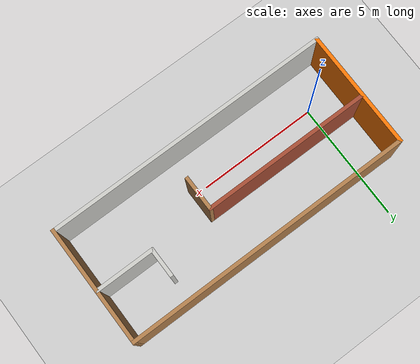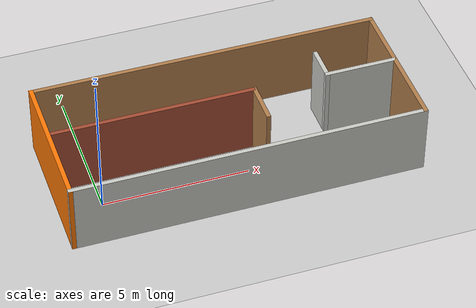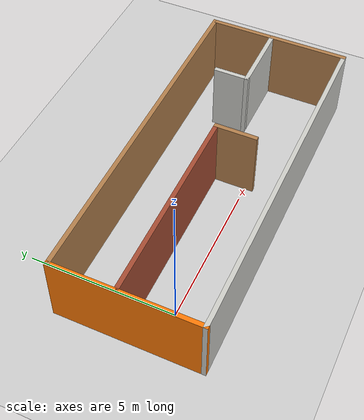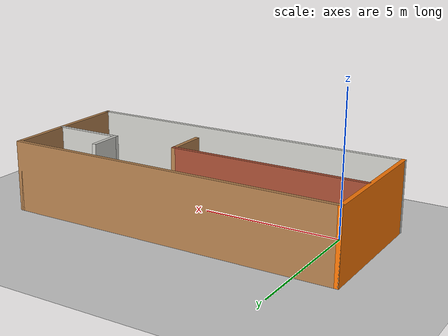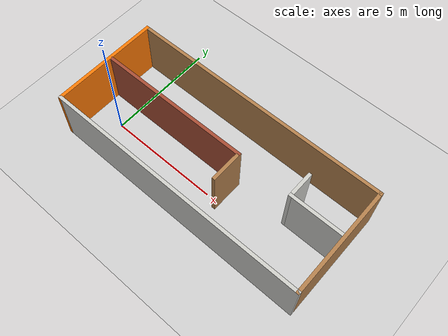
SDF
<sdf version="1.6">
 <world name="default">
  <light name="sun" type="directional">
   <pose>0 0 10 0 -0 0</pose>
   <diffuse>0.8 0.8 0.8 1</diffuse>
   <specular>0.1 0.1 0.1 1</specular>
   <attenuation>
    <range>1000</range>
    <constant>0.9</constant>
    <linear>0.01</linear>
    <quadratic>0.001</quadratic>
   </attenuation>
   <direction>-0.5 0.5 -1</direction>
  </light>
  <model name="ground_plane">
   <static>1</static>
   <link name="link">
    <collision name="collision">
     <geometry><plane><normal>0 0 1</normal><size>100 100</size></plane></geometry>
     <surface><friction><ode><mu>100</mu><mu2>50</mu2></ode></friction></surface>
    </collision>
    <visual name="visual">
     <cast_shadows>0</cast_shadows>
     <geometry><plane><normal>0 0 1</normal><size>100 100</size></plane></geometry>
     <material>
      <script><uri>file://media/materials/scripts/gazebo.material</uri><name>Gazebo/Grey</name></script>
     </material>
    </visual>
   </link>
  </model>
  <gravity>0 0 -9.8</gravity>
  <magnetic_field>6e-06 2.3e-05 -4.2e-05</magnetic_field>
  <atmosphere type="adiabatic"/>
  <physics name="default_physics" default="0" type="ode">
   <max_step_size>0.001</max_step_size>
   <real_time_factor>1</real_time_factor>
   <real_time_update_rate>1000</real_time_update_rate>
  </physics>
  <scene><ambient>0.4 0.4 0.4 1</ambient><background>0.7 0.7 0.7 1</background><shadows>1</shadows></scene>
  <spherical_coordinates>
   <surface_model>EARTH_WGS84</surface_model>
   <latitude_deg>0</latitude_deg>
   <longitude_deg>0</longitude_deg>
   <elevation>0</elevation>
   <heading_deg>0</heading_deg>
  </spherical_coordinates>
  <model name="test_0">
   <pose>4.55154 0.867257 0 0 -0 0</pose>
   <link name="Wall_0">
    <collision name="Wall_0_Collision">
     <geometry><box><size>12 0.15 2.5</size></box></geometry>
     <pose>0 0 1.25 0 -0 0</pose>
    </collision>
    <visual name="Wall_0_Visual">
     <pose>0 0 1.25 0 -0 0</pose>
     <geometry><box><size>12 0.15 2.5</size></box></geometry>
     <material>
      <script><uri>file://media/materials/scripts/gazebo.material</uri><name>Gazebo/CeilingTiled</name></script>
      <ambient>1 1 1 1</ambient>
     </material>
    </visual>
    <pose>0 -2.425 0 0 -0 3.14159</pose>
   </link>
   <link name="Wall_1">
    <collision name="Wall_1_Collision">
     <geometry><box><size>5 0.15 2.5</size></box></geometry>
     <pose>0 0 1.25 0 -0 0</pose>
    </collision>
    <visual name="Wall_1_Visual">
     <pose>0 0 1.25 0 -0 0</pose>
     <geometry><box><size>5 0.15 2.5</size></box></geometry>
     <material>
      <script><uri>file://media/materials/scripts/gazebo.material</uri><name>Gazebo/Grey</name></script>
      <ambient>0.996078 0.47451 0.0196078 1</ambient>
     </material>
    </visual>
    <pose>-5.925 0 0 0 -0 1.5708</pose>
   </link>
   <link name="Wall_2">
    <collision name="Wall_2_Collision">
     <geometry><box><size>12 0.15 2.5</size></box></geometry>
     <pose>0 0 1.25 0 -0 0</pose>
    </collision>
    <visual name="Wall_2_Visual">
     <pose>0 0 1.25 0 -0 0</pose>
     <geometry><box><size>12 0.15 2.5</size></box></geometry>
     <material>
      <script><uri>file://media/materials/scripts/gazebo.material</uri><name>Gazebo/Wood</name></script>
      <ambient>1 1 1 1</ambient>
     </material>
    </visual>
    <pose>0 2.425 0 0 -0 0</pose>
   </link>
   <link name="Wall_3">
    <collision name="Wall_3_Collision">
     <geometry><box><size>5 0.15 2.5</size></box></geometry>
     <pose>0 0 1.25 0 -0 0</pose>
    </collision>
    <visual name="Wall_3_Visual">
     <pose>0 0 1.25 0 -0 0</pose>
     <geometry><box><size>5 0.15 2.5</size></box></geometry>
     <material>
      <script><uri>file://media/materials/scripts/gazebo.material</uri><name>Gazebo/Wood</name></script>
      <ambient>1 1 1 1</ambient>
     </material>
    </visual>
    <pose>5.925 0 0 0 0 -1.5708</pose>
   </link>
   <link name="Wall_5">
    <collision name="Wall_5_Collision">
     <geometry><box><size>7 0.15 2.5</size></box></geometry>
     <pose>0 0 1.25 0 -0 0</pose>
    </collision>
    <visual name="Wall_5_Visual">
     <pose>0 0 1.25 0 -0 0</pose>
     <geometry><box><size>7 0.15 2.5</size></box></geometry>
     <material>
      <script><uri>file://media/materials/scripts/gazebo.material</uri><name>Gazebo/Bricks</name></script>
      <ambient>1 1 1 1</ambient>
     </material>
    </visual>
    <pose>-2.4 0.275 0 0 -0 0</pose>
   </link>
   <link name="Wall_6">
    <collision name="Wall_6_Collision">
     <geometry><box><size>1.5 0.15 2.5</size></box></geometry>
     <pose>0 0 1.25 0 -0 0</pose>
    </collision>
    <visual name="Wall_6_Visual">
     <pose>0 0 1.25 0 -0 0</pose>
     <geometry><box><size>1.5 0.15 2.5</size></box></geometry>
     <material>
      <script><uri>file://media/materials/scripts/gazebo.material</uri><name>Gazebo/Wood</name></script>
      <ambient>1 1 1 1</ambient>
     </material>
    </visual>
    <pose>1.025 -0.399999 0 0 0 -1.5708</pose>
   </link>
   <link name="Wall_8">
    <collision name="Wall_8_Collision">
     <geometry><box><size>2.5 0.15 2.5</size></box></geometry>
     <pose>0 0 1.25 0 -0 0</pose>
    </collision>
    <visual name="Wall_8_Visual">
     <pose>0 0 1.25 0 -0 0</pose>
     <geometry><box><size>2.5 0.15 2.5</size></box></geometry>
     <material>
      <script><uri>file://media/materials/scripts/gazebo.material</uri><name>Gazebo/CeilingTiled</name></script>
      <ambient>1 1 1 1</ambient>
     </material>
    </visual>
    <pose>4.71 0.225001 0 0 -0 3.14159</pose>
   </link>
   <link name="Wall_9">
    <collision name="Wall_9_Collision">
     <geometry><box><size>1.25 0.15 2.5</size></box></geometry>
     <pose>0 0 1.25 0 -0 0</pose>
    </collision>
    <visual name="Wall_9_Visual">
     <pose>0 0 1.25 0 -0 0</pose>
     <geometry><box><size>1.25 0.15 2.5</size></box></geometry>
     <material>
      <script><uri>file://media/materials/scripts/gazebo.material</uri><name>Gazebo/CeilingTiled</name></script>
      <ambient>1 1 1 1</ambient>
     </material>
    </visual>
    <pose>3.535 0.775 0 0 -0 1.5708</pose>
   </link>
   <static>1</static>
  </model>
 </world>
</sdf>
